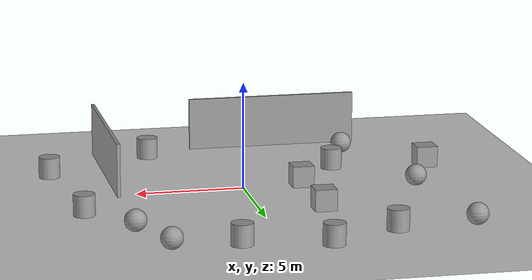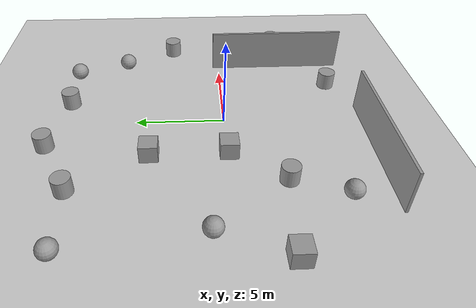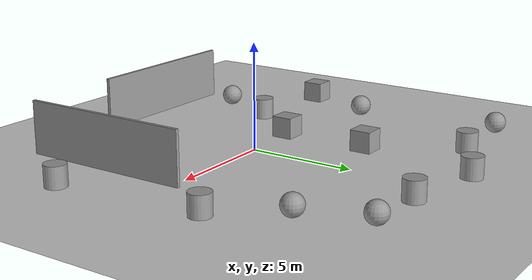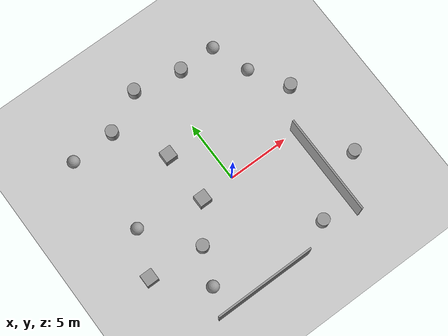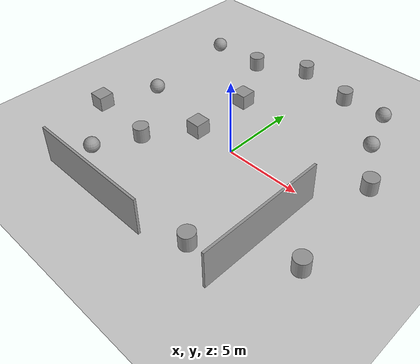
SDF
<sdf version="1.6">
 <world name="default">
  <light name="sun" type="directional">
   <pose>0 0 10 0 -0 0</pose>
   <diffuse>0.8 0.8 0.8 1</diffuse>
   <specular>0.2 0.2 0.2 1</specular>
   <attenuation>
    <range>1000</range>
    <constant>0.9</constant>
    <linear>0.01</linear>
    <quadratic>0.001</quadratic>
   </attenuation>
   <direction>-0.5 0.1 -0.9</direction>
  </light>
  <model name="ground_plane">
   <static>1</static>
   <link name="link">
    <collision name="collision">
     <geometry><plane><normal>0 0 1</normal><size>100 100</size></plane></geometry>
     <surface><friction><ode><mu>100</mu><mu2>50</mu2></ode></friction></surface>
    </collision>
    <visual name="visual">
     <cast_shadows>0</cast_shadows>
     <geometry><plane><normal>0 0 1</normal><size>100 100</size></plane></geometry>
     <material>
      <script><uri>file://media/materials/scripts/gazebo.material</uri><name>Gazebo/Grey</name></script>
     </material>
    </visual>
   </link>
  </model>
  <gravity>0 0 -9.8</gravity>
  <magnetic_field>6e-06 2.3e-05 -4.2e-05</magnetic_field>
  <atmosphere type="adiabatic"/>
  <physics name="default_physics" default="0" type="ode">
   <max_step_size>0.001</max_step_size>
   <real_time_factor>1</real_time_factor>
   <real_time_update_rate>1000</real_time_update_rate>
  </physics>
  <scene><ambient>0.4 0.4 0.4 1</ambient><background>0.7 0.7 0.7 1</background><shadows>1</shadows></scene>
  <spherical_coordinates>
   <surface_model>EARTH_WGS84</surface_model>
   <latitude_deg>0</latitude_deg>
   <longitude_deg>0</longitude_deg>
   <elevation>0</elevation>
   <heading_deg>0</heading_deg>
  </spherical_coordinates>
  <model name="unit_cylinder">
   <pose>-5.20997 8.11455 0.499992 -3e-06 2e-06 0</pose>
   <link name="link">
    <inertial>
     <mass>1</mass>
     <inertia><ixx>0.145833</ixx><ixy>0</ixy><ixz>0</ixz><iyy>0.145833</iyy><iyz>0</iyz><izz>0.125</izz></inertia>
    </inertial>
    <collision name="collision">
     <geometry><cylinder><radius>0.5</radius><length>1</length></cylinder></geometry>
    </collision>
    <visual name="visual">
     <geometry><cylinder><radius>0.5</radius><length>1</length></cylinder></geometry>
     <material>
      <script><name>Gazebo/Grey</name><uri>file://media/materials/scripts/gazebo.material</uri></script>
     </material>
    </visual>
   </link>
  </model>
  <model name="unit_sphere">
   <pose>5.98891 5.98533 0.5 0 -0 0</pose>
   <link name="link">
    <inertial>
     <mass>1</mass>
     <inertia><ixx>0.1</ixx><ixy>0</ixy><ixz>0</ixz><iyy>0.1</iyy><iyz>0</iyz><izz>0.1</izz></inertia>
    </inertial>
    <collision name="collision"><geometry><sphere><radius>0.5</radius></sphere></geometry></collision>
    <visual name="visual">
     <geometry><sphere><radius>0.5</radius></sphere></geometry>
     <material>
      <script><name>Gazebo/Grey</name><uri>file://media/materials/scripts/gazebo.material</uri></script>
     </material>
    </visual>
   </link>
  </model>
  <model name="unit_cylinder_0">
   <pose>-4.87987 -2.92007 0.499994 -4e-06 -3e-06 -0</pose>
   <link name="link">
    <inertial>
     <mass>1</mass>
     <inertia><ixx>0.145833</ixx><ixy>0</ixy><ixz>0</ixz><iyy>0.145833</iyy><iyz>0</iyz><izz>0.125</izz></inertia>
    </inertial>
    <collision name="collision">
     <geometry><cylinder><radius>0.5</radius><length>1</length></cylinder></geometry>
    </collision>
    <visual name="visual">
     <geometry><cylinder><radius>0.5</radius><length>1</length></cylinder></geometry>
     <material>
      <script><name>Gazebo/Grey</name><uri>file://media/materials/scripts/gazebo.material</uri></script>
     </material>
    </visual>
   </link>
  </model>
  <model name="unit_box">
   <pose>-2.84891 4.13792 0.5 0 -0 0</pose>
   <link name="link">
    <inertial>
     <mass>1</mass>
     <inertia>
      <ixx>0.166667</ixx>
      <ixy>0</ixy>
      <ixz>0</ixz>
      <iyy>0.166667</iyy>
      <iyz>0</iyz>
      <izz>0.166667</izz>
     </inertia>
    </inertial>
    <collision name="collision"><geometry><box><size>1 1 1</size></box></geometry></collision>
    <visual name="visual">
     <geometry><box><size>1 1 1</size></box></geometry>
     <material>
      <script><name>Gazebo/Grey</name><uri>file://media/materials/scripts/gazebo.material</uri></script>
     </material>
    </visual>
   </link>
  </model>
  <model name="unit_sphere_0">
   <pose>-7.99018 1.02119 0.5 0 -0 0</pose>
   <link name="link">
    <inertial>
     <mass>1</mass>
     <inertia><ixx>0.1</ixx><ixy>0</ixy><ixz>0</ixz><iyy>0.1</iyy><iyz>0</iyz><izz>0.1</izz></inertia>
    </inertial>
    <collision name="collision"><geometry><sphere><radius>0.5</radius></sphere></geometry></collision>
    <visual name="visual">
     <geometry><sphere><radius>0.5</radius></sphere></geometry>
     <material>
      <script><name>Gazebo/Grey</name><uri>file://media/materials/scripts/gazebo.material</uri></script>
     </material>
    </visual>
   </link>
  </model>
  <model name="test_9">
   <pose>5.86837 -3.76831 0 0 -0 0</pose>
   <link name="Wall_6">
    <collision name="Wall_6_Collision">
     <geometry><box><size>8.25 0.15 2.5</size></box></geometry>
     <pose>0 0 1.25 0 -0 0</pose>
    </collision>
    <visual name="Wall_6_Visual">
     <pose>0 0 1.25 0 -0 0</pose>
     <geometry><box><size>8.25 0.15 2.5</size></box></geometry>
     <material>
      <script><uri>file://media/materials/scripts/gazebo.material</uri><name>Gazebo/Grey</name></script>
      <ambient>1 1 1 1</ambient>
     </material>
     <meta><layer>0</layer></meta>
    </visual>
    <pose>0 -0 0 0 -0 -1.5708</pose>
   </link>
   <static>1</static>
  </model>
  <model name="test_10">
   <pose>-3.02325 -7.93996 0 0 -0 0</pose>
   <link name="Wall_13">
    <collision name="Wall_13_Collision">
     <geometry><box><size>8.25 0.15 2.5</size></box></geometry>
     <pose>0 0 1.25 0 -0 0</pose>
    </collision>
    <visual name="Wall_13_Visual">
     <pose>0 0 1.25 0 -0 0</pose>
     <geometry><box><size>8.25 0.15 2.5</size></box></geometry>
     <material>
      <script><uri>file://media/materials/scripts/gazebo.material</uri><name>Gazebo/Grey</name></script>
      <ambient>1 1 1 1</ambient>
     </material>
     <meta><layer>0</layer></meta>
    </visual>
    <pose>0 0 0 0 -0 3.14159</pose>
   </link>
   <static>1</static>
  </model>
  <model name="unit_cylinder_1">
   <pose>1.89481 9.00743 0.499998 3e-06 -3e-06 0</pose>
   <link name="link">
    <inertial>
     <mass>1</mass>
     <inertia><ixx>0.145833</ixx><ixy>0</ixy><ixz>0</ixz><iyy>0.145833</iyy><iyz>0</iyz><izz>0.125</izz></inertia>
    </inertial>
    <collision name="collision">
     <geometry><cylinder><radius>0.5</radius><length>1</length></cylinder></geometry>
    </collision>
    <visual name="visual">
     <geometry><cylinder><radius>0.5</radius><length>1</length></cylinder></geometry>
     <material>
      <script><name>Gazebo/Grey</name><uri>file://media/materials/scripts/gazebo.material</uri></script>
     </material>
    </visual>
   </link>
  </model>
  <model name="unit_cylinder_2">
   <pose>3.41515 -6.69194 0.499992 -3e-06 3e-06 0</pose>
   <link name="link">
    <inertial>
     <mass>1</mass>
     <inertia><ixx>0.145833</ixx><ixy>0</ixy><ixz>0</ixz><iyy>0.145833</iyy><iyz>0</iyz><izz>0.125</izz></inertia>
    </inertial>
    <collision name="collision">
     <geometry><cylinder><radius>0.5</radius><length>1</length></cylinder></geometry>
    </collision>
    <visual name="visual">
     <geometry><cylinder><radius>0.5</radius><length>1</length></cylinder></geometry>
     <material>
      <script><name>Gazebo/Grey</name><uri>file://media/materials/scripts/gazebo.material</uri></script>
     </material>
    </visual>
   </link>
  </model>
  <model name="unit_cylinder_3">
   <pose>7.83068 3.0299 0.499998 3e-06 -3e-06 0</pose>
   <link name="link">
    <inertial>
     <mass>1</mass>
     <inertia><ixx>0.145833</ixx><ixy>0</ixy><ixz>0</ixz><iyy>0.145833</iyy><iyz>0</iyz><izz>0.125</izz></inertia>
    </inertial>
    <collision name="collision">
     <geometry><cylinder><radius>0.5</radius><length>1</length></cylinder></geometry>
    </collision>
    <visual name="visual">
     <geometry><cylinder><radius>0.5</radius><length>1</length></cylinder></geometry>
     <material>
      <script><name>Gazebo/Grey</name><uri>file://media/materials/scripts/gazebo.material</uri></script>
     </material>
    </visual>
   </link>
  </model>
  <model name="unit_box_0">
   <pose>-2.77573 -0.076402 0.5 -0 -0 -0</pose>
   <link name="link">
    <inertial>
     <mass>1</mass>
     <inertia>
      <ixx>0.166667</ixx>
      <ixy>0</ixy>
      <ixz>0</ixz>
      <iyy>0.166667</iyy>
      <iyz>0</iyz>
      <izz>0.166667</izz>
     </inertia>
    </inertial>
    <collision name="collision"><geometry><box><size>1 1 1</size></box></geometry></collision>
    <visual name="visual">
     <geometry><box><size>1 1 1</size></box></geometry>
     <material>
      <script><name>Gazebo/Grey</name><uri>file://media/materials/scripts/gazebo.material</uri></script>
     </material>
    </visual>
   </link>
  </model>
  <model name="unit_cylinder_4">
   <pose>8.52929 -3.92073 0.499998 3e-06 -4e-06 0</pose>
   <link name="link">
    <inertial>
     <mass>1</mass>
     <inertia><ixx>0.145833</ixx><ixy>0</ixy><ixz>0</ixz><iyy>0.145833</iyy><iyz>0</iyz><izz>0.125</izz></inertia>
    </inertial>
    <collision name="collision">
     <geometry><cylinder><radius>0.5</radius><length>1</length></cylinder></geometry>
    </collision>
    <visual name="visual">
     <geometry><cylinder><radius>0.5</radius><length>1</length></cylinder></geometry>
     <material>
      <script><name>Gazebo/Grey</name><uri>file://media/materials/scripts/gazebo.material</uri></script>
     </material>
    </visual>
   </link>
  </model>
  <model name="unit_sphere_1">
   <pose>-8.85011 7.99171 0.5 0 -0 0</pose>
   <link name="link">
    <inertial>
     <mass>1</mass>
     <inertia><ixx>0.1</ixx><ixy>0</ixy><ixz>0</ixz><iyy>0.1</iyy><iyz>0</iyz><izz>0.1</izz></inertia>
    </inertial>
    <collision name="collision"><geometry><sphere><radius>0.5</radius></sphere></geometry></collision>
    <visual name="visual">
     <geometry><sphere><radius>0.5</radius></sphere></geometry>
     <material>
      <script><name>Gazebo/Grey</name><uri>file://media/materials/scripts/gazebo.material</uri></script>
     </material>
    </visual>
   </link>
  </model>
  <model name="unit_cylinder_5">
   <pose>-1.95401 9.77474 0.499998 3e-06 4e-06 -0</pose>
   <link name="link">
    <inertial>
     <mass>1</mass>
     <inertia><ixx>0.145833</ixx><ixy>0</ixy><ixz>0</ixz><iyy>0.145833</iyy><iyz>0</iyz><izz>0.125</izz></inertia>
    </inertial>
    <collision name="collision">
     <geometry><cylinder><radius>0.5</radius><length>1</length></cylinder></geometry>
    </collision>
    <visual name="visual">
     <geometry><cylinder><radius>0.5</radius><length>1</length></cylinder></geometry>
     <material>
      <script><name>Gazebo/Grey</name><uri>file://media/materials/scripts/gazebo.material</uri></script>
     </material>
    </visual>
   </link>
  </model>
  <model name="unit_box_1">
   <pose>-9.40386 -2.51419 0.5 -0 -0 -0</pose>
   <link name="link">
    <inertial>
     <mass>1</mass>
     <inertia>
      <ixx>0.166667</ixx>
      <ixy>0</ixy>
      <ixz>0</ixz>
      <iyy>0.166667</iyy>
      <iyz>0</iyz>
      <izz>0.166667</izz>
     </inertia>
    </inertial>
    <collision name="collision"><geometry><box><size>1 1 1</size></box></geometry></collision>
    <visual name="visual">
     <geometry><box><size>1 1 1</size></box></geometry>
     <material>
      <script><name>Gazebo/Grey</name><uri>file://media/materials/scripts/gazebo.material</uri></script>
     </material>
    </visual>
   </link>
  </model>
  <model name="unit_sphere_2">
   <pose>4.91529 8.99631 0.5 0 -0 0</pose>
   <link name="link">
    <inertial>
     <mass>1</mass>
     <inertia><ixx>0.1</ixx><ixy>0</ixy><ixz>0</ixz><iyy>0.1</iyy><iyz>0</iyz><izz>0.1</izz></inertia>
    </inertial>
    <collision name="collision"><geometry><sphere><radius>0.5</radius></sphere></geometry></collision>
    <visual name="visual">
     <geometry><sphere><radius>0.5</radius></sphere></geometry>
     <material>
      <script><name>Gazebo/Grey</name><uri>file://media/materials/scripts/gazebo.material</uri></script>
     </material>
    </visual>
   </link>
  </model>
  <model name="unit_sphere_3">
   <pose>-6.05439 -5.76844 0.5 0 -0 0</pose>
   <link name="link">
    <inertial>
     <mass>1</mass>
     <inertia><ixx>0.1</ixx><ixy>0</ixy><ixz>0</ixz><iyy>0.1</iyy><iyz>0</iyz><izz>0.1</izz></inertia>
    </inertial>
    <collision name="collision"><geometry><sphere><radius>0.5</radius></sphere></geometry></collision>
    <visual name="visual">
     <geometry><sphere><radius>0.5</radius></sphere></geometry>
     <material>
      <script><name>Gazebo/Grey</name><uri>file://media/materials/scripts/gazebo.material</uri></script>
     </material>
    </visual>
   </link>
  </model>
  <model name="human_1_collision_model">
   <pose>0 0 -100 0 0 0</pose>
   <static>true</static>
   <link name="link">
    <collision name="link">
     <pose>0 -0.18 0.05 0 -1.5707963267948966 0</pose>
     <geometry><box><size>0.44 1.62 0.60</size></box></geometry>
    </collision>
   </link>
  </model>
  <model name="human_2_collision_model">
   <pose>0 0 -100 0 0 0</pose>
   <static>true</static>
   <link name="link">
    <collision name="link">
     <pose>0 -0.18 0.05 0 -1.5707963267948966 0</pose>
     <geometry><box><size>0.44 1.62 0.60</size></box></geometry>
    </collision>
   </link>
  </model>
  <model name="human_3_collision_model">
   <pose>0 0 -100 0 0 0</pose>
   <static>true</static>
   <link name="link">
    <collision name="link">
     <pose>0 -0.18 0.05 0 -1.5707963267948966 0</pose>
     <geometry><box><size>0.44 1.62 0.60</size></box></geometry>
    </collision>
   </link>
  </model>
  <model name="human_4_collision_model">
   <pose>0 0 -100 0 0 0</pose>
   <static>true</static>
   <link name="link">
    <collision name="link">
     <pose>0 -0.18 0.05 0 -1.5707963267948966 0</pose>
     <geometry><box><size>0.44 1.62 0.60</size></box></geometry>
    </collision>
   </link>
  </model>
  <model name="human_5_collision_model">
   <pose>0 0 -100 0 0 0</pose>
   <static>true</static>
   <link name="link">
    <collision name="link">
     <pose>0 -0.18 0.05 0 -1.5707963267948966 0</pose>
     <geometry><box><size>0.44 1.62 0.60</size></box></geometry>
    </collision>
   </link>
  </model>
  <model name="human_6_collision_model">
   <pose>0 0 -100 0 0 0</pose>
   <static>true</static>
   <link name="link">
    <collision name="link">
     <pose>0 -0.18 0.05 0 -1.5707963267948966 0</pose>
     <geometry><box><size>0.44 1.62 0.60</size></box></geometry>
    </collision>
   </link>
  </model>
  <model name="human_7_collision_model">
   <pose>0 0 -100 0 0 0</pose>
   <static>true</static>
   <link name="link">
    <collision name="link">
     <pose>0 -0.18 0.05 0 -1.5707963267948966 0</pose>
     <geometry><box><size>0.44 1.62 0.60</size></box></geometry>
    </collision>
   </link>
  </model>
  <model name="human_8_collision_model">
   <pose>0 0 -100 0 0 0</pose>
   <static>true</static>
   <link name="link">
    <collision name="link">
     <pose>0 -0.18 0.05 0 -1.5707963267948966 0</pose>
     <geometry><box><size>0.44 1.62 0.60</size></box></geometry>
    </collision>
   </link>
  </model>
  <model name="human_9_collision_model">
   <pose>0 0 -100 0 0 0</pose>
   <static>true</static>
   <link name="link">
    <collision name="link">
     <pose>0 -0.18 0.05 0 -1.5707963267948966 0</pose>
     <geometry><box><size>0.44 1.62 0.60</size></box></geometry>
    </collision>
   </link>
  </model>
  <model name="human_10_collision_model">
   <pose>0 0 -100 0 0 0</pose>
   <static>true</static>
   <link name="link">
    <collision name="link">
     <pose>0 -0.18 0.05 0 -1.5707963267948966 0</pose>
     <geometry><box><size>0.44 1.62 0.60</size></box></geometry>
    </collision>
   </link>
  </model>
  <model name="human_11_collision_model">
   <pose>0 0 -100 0 0 0</pose>
   <static>true</static>
   <link name="link">
    <collision name="link">
     <pose>0 -0.18 0.05 0 -1.5707963267948966 0</pose>
     <geometry><box><size>0.44 1.62 0.60</size></box></geometry>
    </collision>
   </link>
  </model>
  <model name="human_12_collision_model">
   <pose>0 0 -100 0 0 0</pose>
   <static>true</static>
   <link name="link">
    <collision name="link">
     <pose>0 -0.18 0.05 0 -1.5707963267948966 0</pose>
     <geometry><box><size>0.44 1.62 0.60</size></box></geometry>
    </collision>
   </link>
  </model>
  <model name="human_13_collision_model">
   <pose>0 0 -100 0 0 0</pose>
   <static>true</static>
   <link name="link">
    <collision name="link">
     <pose>0 -0.18 0.05 0 -1.5707963267948966 0</pose>
     <geometry><box><size>0.44 1.62 0.60</size></box></geometry>
    </collision>
   </link>
  </model>
  <model name="human_80283_collision_model">
   <pose>0 0 -100 0 0 0</pose>
   <static>true</static>
   <link name="link">
    <collision name="link">
     <pose>0 -0.18 0.05 0 -1.5707963267948966 0</pose>
     <geometry><box><size>0.44 1.62 0.60</size></box></geometry>
    </collision>
   </link>
  </model>
 </world>
</sdf>
